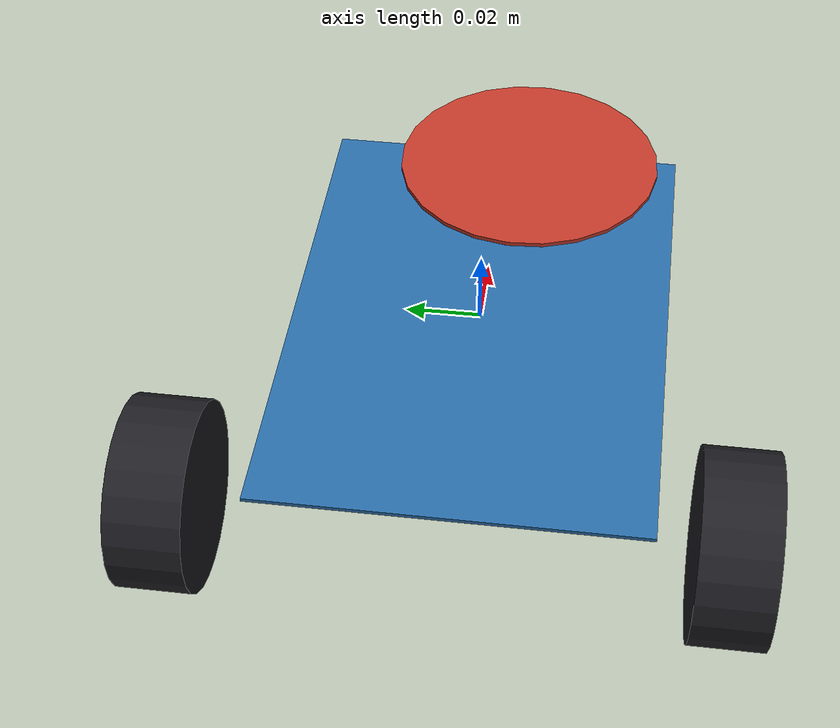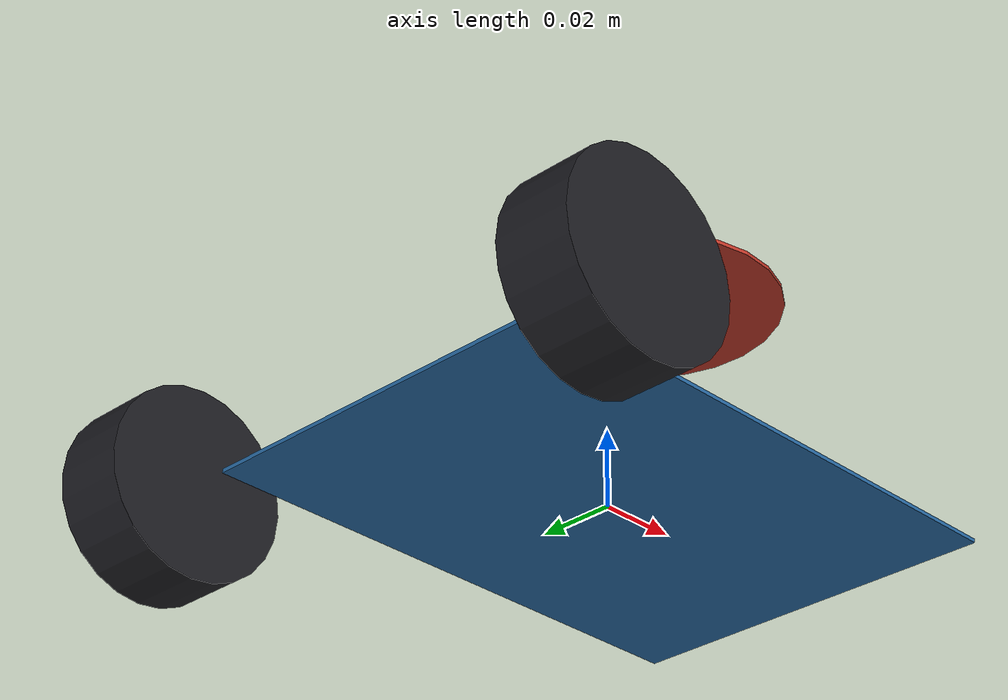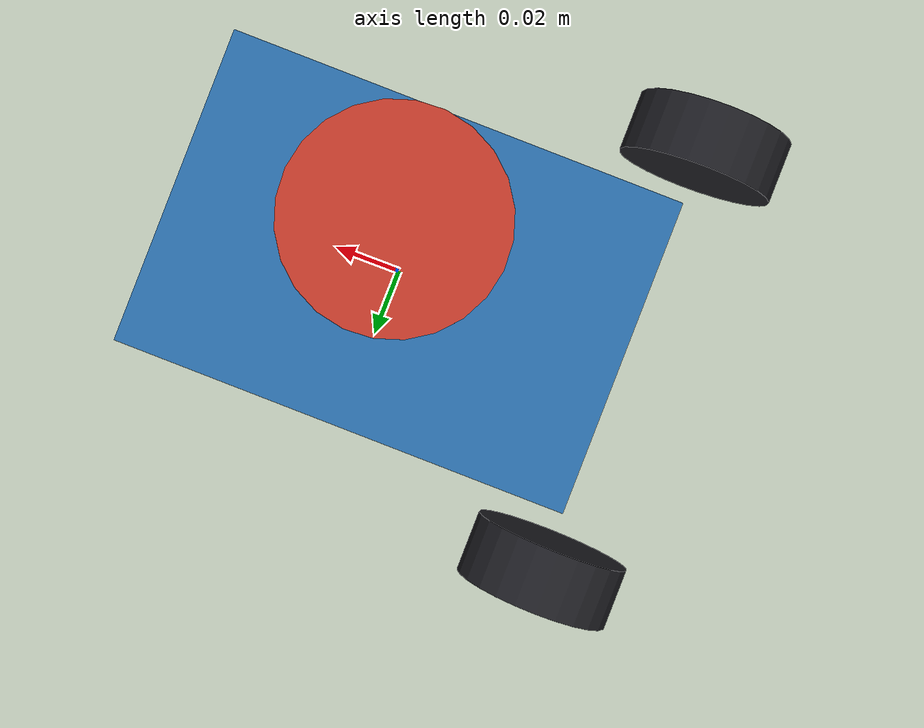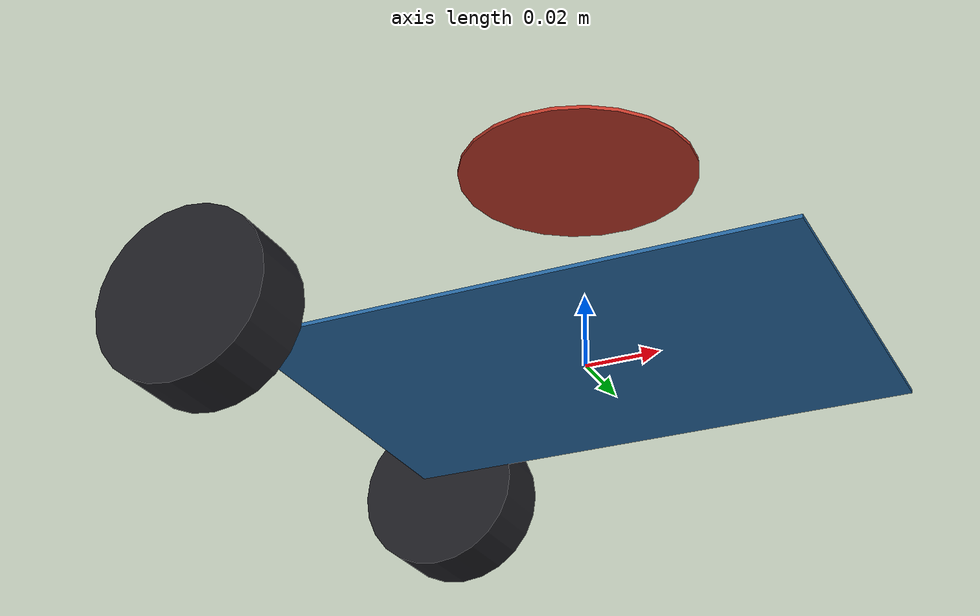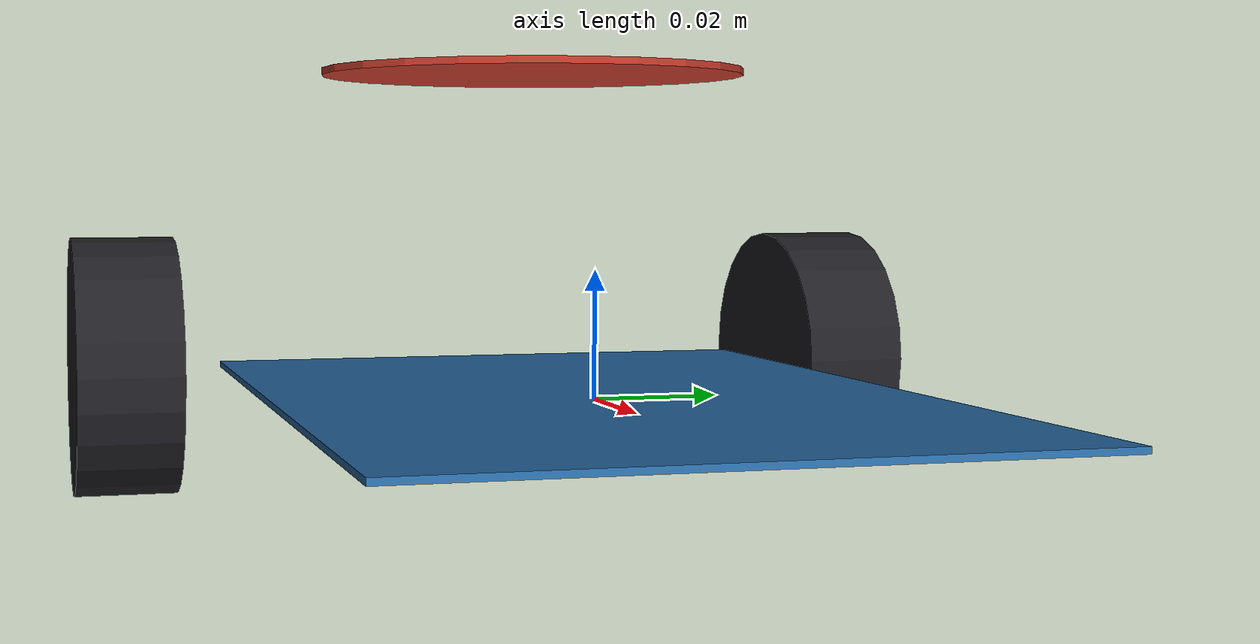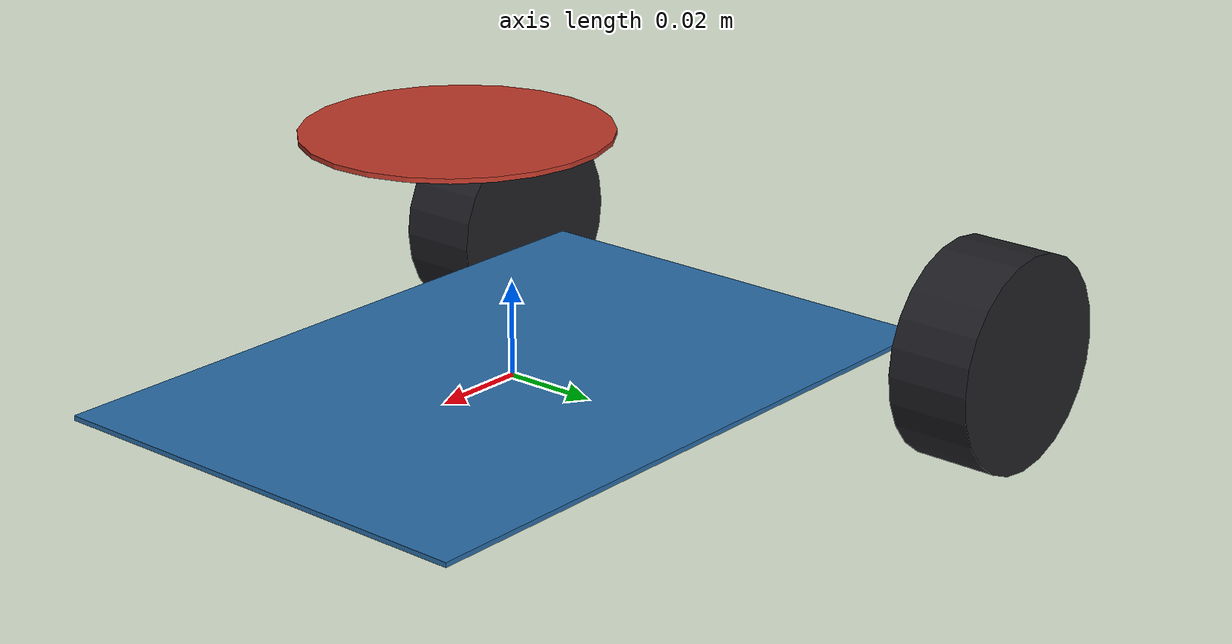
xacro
<?xml version="1.0"?>
<robot xmlns:xacro="http://www.ros.org/wiki/xacro" name="fishbot_measured_20261107">
  <!-- Measured planar layout. Body thickness and wheel-center Z are visual
       placeholders, not measured collision/inertia properties. -->
  <xacro:arg name="body_thickness" default="0.001"/>
  <xacro:arg name="wheel_center_z" default="0.0"/>
  <xacro:arg name="laser_x" default="0.0033"/>
  <xacro:arg name="laser_y" default="-0.01115"/>
  <xacro:arg name="laser_z" default="0.05"/>
  <xacro:arg name="laser_roll" default="0.0"/>
  <xacro:arg name="laser_pitch" default="0.0"/>
  <xacro:arg name="laser_yaw" default="-1.6406094968746698"/>
  <material name="plate"><color rgba="0.16 0.42 0.65 1"/></material>
  <material name="wheel"><color rgba="0.12 0.12 0.14 1"/></material>
  <material name="laser"><color rgba="0.75 0.22 0.16 1"/></material>
  <link name="base_link">
    <visual><geometry><box size="0.1445 0.100 $(arg body_thickness)"/></geometry><material name="plate"/></visual>
  </link>
  <link name="base_axle"/>
  <joint name="base_to_axle" type="fixed"><parent link="base_link"/><child link="base_axle"/><origin xyz="-0.07225 0 0"/></joint>
  <xacro:macro name="wheel_visual" params="side y">
    <link name="${side}_wheel_link"><visual><origin rpy="1.5707963267948966 0 0"/><geometry><cylinder radius="0.02365" length="0.0185"/></geometry><material name="wheel"/></visual></link>
    <!-- Fixed visual wheel frames: no encoder JointState stream is available. -->
    <joint name="${side}_wheel_mount" type="fixed"><parent link="base_axle"/><child link="${side}_wheel_link"/><origin xyz="0 ${y} $(arg wheel_center_z)"/></joint>
  </xacro:macro>
  <xacro:wheel_visual side="left" y="0.06775"/>
  <xacro:wheel_visual side="right" y="-0.06775"/>
  <link name="laser_link"><visual><geometry><cylinder radius="0.03175" length="0.001"/></geometry><material name="laser"/></visual></link>
  <joint name="laser_mount" type="fixed"><parent link="base_link"/><child link="laser_link"/><origin xyz="$(arg laser_x) $(arg laser_y) $(arg laser_z)" rpy="$(arg laser_roll) $(arg laser_pitch) $(arg laser_yaw)"/></joint>
</robot>
